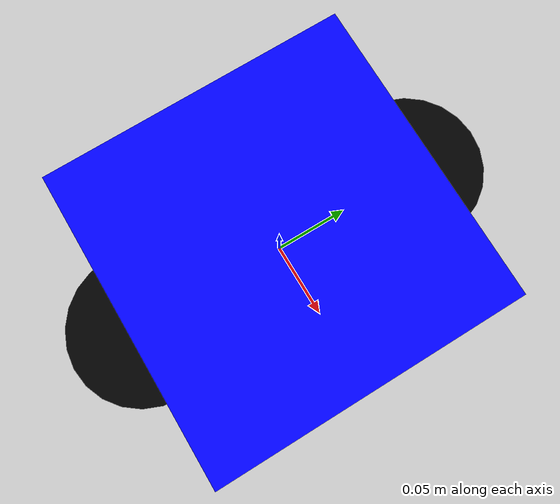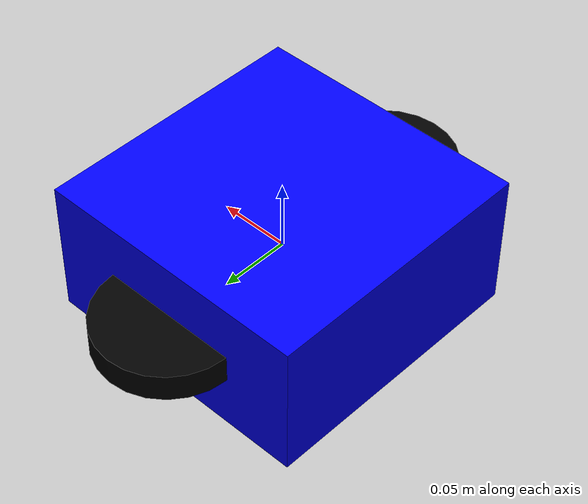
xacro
<?xml version="1.0"?>
<robot xmlns:xacro="http://www.ros.org/wiki/xacro" name="diff_drive">
  <xacro:property name="length" value="0.2"/>
  <xacro:property name="width" value="0.2"/>
  <xacro:property name="wheel_radius" value="0.05"/>

  <!-- Base link -->
  <link name="base_link">
    <visual>
      <geometry>
        <box size="${length} ${width} 0.1"/>
      </geometry>
      <material name="blue">
        <color rgba="0 0 1 1"/>
      </material>
    </visual>
    <collision>
      <geometry>
        <box size="${length} ${width} 0.1"/>
      </geometry>
    </collision>
  </link>

  <!-- Left wheel -->
  <link name="left_wheel">
    <visual>
      <geometry>
        <cylinder length="0.02" radius="${wheel_radius}"/>
      </geometry>
      <material name="black">
        <color rgba="0 0 0 1"/>
      </material>
    </visual>
    <collision>
      <geometry>
        <cylinder length="0.02" radius="${wheel_radius}"/>
      </geometry>
    </collision>
  </link>

  <!-- Right wheel -->
  <link name="right_wheel">
    <visual>
      <geometry>
        <cylinder length="0.02" radius="${wheel_radius}"/>
      </geometry>
      <material name="black">
        <color rgba="0 0 0 1"/>
      </material>
    </visual>
    <collision>
      <geometry>
        <cylinder length="0.02" radius="${wheel_radius}"/>
      </geometry>
    </collision>
  </link>

  <!-- Joints -->
  <joint name="left_wheel_joint" type="continuous">
    <parent link="base_link"/>
    <child link="left_wheel"/>
    <origin xyz="0 0.1 0"/>
    <axis xyz="0 1 0"/>
  </joint>

  <joint name="right_wheel_joint" type="continuous">
    <parent link="base_link"/>
    <child link="right_wheel"/>
    <origin xyz="0 -0.1 0"/>
    <axis xyz="0 1 0"/>
  </joint>
</robot>
